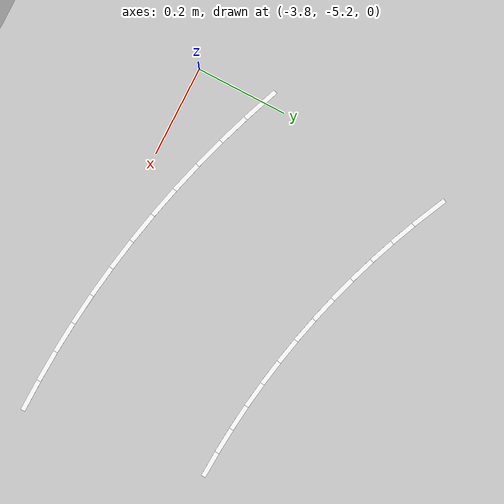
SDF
<sdf version="1.7">
 <world name="default">
  <model name="ground_plane">
   <static>1</static>
   <link name="link">
    <collision name="collision">
     <geometry><plane><normal>0 0 1</normal><size>100 100</size></plane></geometry>
     <surface>
      <contact><collide_bitmask>65535</collide_bitmask></contact>
      <friction><ode><mu>100</mu><mu2>50</mu2></ode></friction>
     </surface>
    </collision>
    <visual name="visual">
     <cast_shadows>0</cast_shadows>
     <geometry><plane><normal>0 0 1</normal><size>100 100</size></plane></geometry>
     <material>
      <script><uri>file://media/materials/scripts/gazebo.material</uri><name>Gazebo/Grey</name></script>
     </material>
    </visual>
   </link>
  </model>
  <model name="lane_line_left_385">
   <static>1</static>
   <link name="link">
    <pose>0 0 -0.004 0 -0 0</pose>
    <visual name="visual">
     <geometry><box><size>0.0841 0.01 0.01</size></box></geometry>
     <material><ambient>1 1 1 1</ambient><diffuse>1 1 1 1</diffuse></material>
    </visual>
    <collision name="collision"><geometry><box><size>0.0841 0.01 0.01</size></box></geometry></collision>
   </link>
   <pose>-3.75479 -4.63382 0 0 0 -0.43277</pose>
  </model>
  <model name="lane_line_left_386">
   <static>1</static>
   <link name="link">
    <pose>0 0 -0.004 0 -0 0</pose>
    <visual name="visual">
     <geometry><box><size>0.0841 0.01 0.01</size></box></geometry>
     <material><ambient>1 1 1 1</ambient><diffuse>1 1 1 1</diffuse></material>
    </visual>
    <collision name="collision"><geometry><box><size>0.0841 0.01 0.01</size></box></geometry></collision>
   </link>
   <pose>-3.70204 -4.65717 0 0 0 -0.400713</pose>
  </model>
  <model name="lane_line_left_387">
   <static>1</static>
   <link name="link">
    <pose>0 0 -0.004 0 -0 0</pose>
    <visual name="visual">
     <geometry><box><size>0.0841 0.01 0.01</size></box></geometry>
     <material><ambient>1 1 1 1</ambient><diffuse>1 1 1 1</diffuse></material>
    </visual>
    <collision name="collision"><geometry><box><size>0.0841 0.01 0.01</size></box></geometry></collision>
   </link>
   <pose>-3.64856 -4.67882 0 0 0 -0.368656</pose>
  </model>
  <model name="lane_line_right_387">
   <static>1</static>
   <link name="link">
    <pose>0 0 -0.004 0 -0 0</pose>
    <visual name="visual">
     <geometry><box><size>0.0841 0.01 0.01</size></box></geometry>
     <material><ambient>1 1 1 1</ambient><diffuse>1 1 1 1</diffuse></material>
    </visual>
    <collision name="collision"><geometry><box><size>0.0841 0.01 0.01</size></box></geometry></collision>
   </link>
   <pose>-3.7927 -5.05195 0 0 0 -0.368656</pose>
  </model>
  <model name="lane_line_left_388">
   <static>1</static>
   <link name="link">
    <pose>0 0 -0.004 0 -0 0</pose>
    <visual name="visual">
     <geometry><box><size>0.0841 0.01 0.01</size></box></geometry>
     <material><ambient>1 1 1 1</ambient><diffuse>1 1 1 1</diffuse></material>
    </visual>
    <collision name="collision"><geometry><box><size>0.0841 0.01 0.01</size></box></geometry></collision>
   </link>
   <pose>-3.59442 -4.69875 0 0 0 -0.336599</pose>
  </model>
  <model name="lane_line_right_388">
   <static>1</static>
   <link name="link">
    <pose>0 0 -0.004 0 -0 0</pose>
    <visual name="visual">
     <geometry><box><size>0.0841 0.01 0.01</size></box></geometry>
     <material><ambient>1 1 1 1</ambient><diffuse>1 1 1 1</diffuse></material>
    </visual>
    <collision name="collision"><geometry><box><size>0.0841 0.01 0.01</size></box></geometry></collision>
   </link>
   <pose>-3.72653 -5.0763 0 0 0 -0.336599</pose>
  </model>
  <model name="lane_line_left_389">
   <static>1</static>
   <link name="link">
    <pose>0 0 -0.004 0 -0 0</pose>
    <visual name="visual">
     <geometry><box><size>0.0841 0.01 0.01</size></box></geometry>
     <material><ambient>1 1 1 1</ambient><diffuse>1 1 1 1</diffuse></material>
    </visual>
    <collision name="collision"><geometry><box><size>0.0841 0.01 0.01</size></box></geometry></collision>
   </link>
   <pose>-3.53966 -4.71693 0 0 0 -0.304542</pose>
  </model>
  <model name="lane_line_right_389">
   <static>1</static>
   <link name="link">
    <pose>0 0 -0.004 0 -0 0</pose>
    <visual name="visual">
     <geometry><box><size>0.0841 0.01 0.01</size></box></geometry>
     <material><ambient>1 1 1 1</ambient><diffuse>1 1 1 1</diffuse></material>
    </visual>
    <collision name="collision"><geometry><box><size>0.0841 0.01 0.01</size></box></geometry></collision>
   </link>
   <pose>-3.65961 -5.09852 0 0 0 -0.304542</pose>
  </model>
  <model name="lane_line_left_390">
   <static>1</static>
   <link name="link">
    <pose>0 0 -0.004 0 -0 0</pose>
    <visual name="visual">
     <geometry><box><size>0.0841 0.01 0.01</size></box></geometry>
     <material><ambient>1 1 1 1</ambient><diffuse>1 1 1 1</diffuse></material>
    </visual>
    <collision name="collision"><geometry><box><size>0.0841 0.01 0.01</size></box></geometry></collision>
   </link>
   <pose>-3.48436 -4.73334 0 0 0 -0.272485</pose>
  </model>
  <model name="lane_line_right_390">
   <static>1</static>
   <link name="link">
    <pose>0 0 -0.004 0 -0 0</pose>
    <visual name="visual">
     <geometry><box><size>0.0841 0.01 0.01</size></box></geometry>
     <material><ambient>1 1 1 1</ambient><diffuse>1 1 1 1</diffuse></material>
    </visual>
    <collision name="collision"><geometry><box><size>0.0841 0.01 0.01</size></box></geometry></collision>
   </link>
   <pose>-3.59201 -5.11858 0 0 0 -0.272485</pose>
  </model>
  <model name="lane_line_left_391">
   <static>1</static>
   <link name="link">
    <pose>0 0 -0.004 0 -0 0</pose>
    <visual name="visual">
     <geometry><box><size>0.0841 0.01 0.01</size></box></geometry>
     <material><ambient>1 1 1 1</ambient><diffuse>1 1 1 1</diffuse></material>
    </visual>
    <collision name="collision"><geometry><box><size>0.0841 0.01 0.01</size></box></geometry></collision>
   </link>
   <pose>-3.42855 -4.74798 0 0 0 -0.240428</pose>
  </model>
  <model name="lane_line_right_391">
   <static>1</static>
   <link name="link">
    <pose>0 0 -0.004 0 -0 0</pose>
    <visual name="visual">
     <geometry><box><size>0.0841 0.01 0.01</size></box></geometry>
     <material><ambient>1 1 1 1</ambient><diffuse>1 1 1 1</diffuse></material>
    </visual>
    <collision name="collision"><geometry><box><size>0.0841 0.01 0.01</size></box></geometry></collision>
   </link>
   <pose>-3.5238 -5.13647 0 0 0 -0.240428</pose>
  </model>
  <model name="lane_line_left_392">
   <static>1</static>
   <link name="link">
    <pose>0 0 -0.004 0 -0 0</pose>
    <visual name="visual">
     <geometry><box><size>0.0841 0.01 0.01</size></box></geometry>
     <material><ambient>1 1 1 1</ambient><diffuse>1 1 1 1</diffuse></material>
    </visual>
    <collision name="collision"><geometry><box><size>0.0841 0.01 0.01</size></box></geometry></collision>
   </link>
   <pose>-3.37231 -4.76081 0 0 0 -0.208371</pose>
  </model>
  <model name="lane_line_right_392">
   <static>1</static>
   <link name="link">
    <pose>0 0 -0.004 0 -0 0</pose>
    <visual name="visual">
     <geometry><box><size>0.0841 0.01 0.01</size></box></geometry>
     <material><ambient>1 1 1 1</ambient><diffuse>1 1 1 1</diffuse></material>
    </visual>
    <collision name="collision"><geometry><box><size>0.0841 0.01 0.01</size></box></geometry></collision>
   </link>
   <pose>-3.45505 -5.15216 0 0 0 -0.208371</pose>
  </model>
  <model name="lane_line_left_393">
   <static>1</static>
   <link name="link">
    <pose>0 0 -0.004 0 -0 0</pose>
    <visual name="visual">
     <geometry><box><size>0.0841 0.01 0.01</size></box></geometry>
     <material><ambient>1 1 1 1</ambient><diffuse>1 1 1 1</diffuse></material>
    </visual>
    <collision name="collision"><geometry><box><size>0.0841 0.01 0.01</size></box></geometry></collision>
   </link>
   <pose>-3.31568 -4.77184 0 0 0 -0.176314</pose>
  </model>
  <model name="lane_line_right_393">
   <static>1</static>
   <link name="link">
    <pose>0 0 -0.004 0 -0 0</pose>
    <visual name="visual">
     <geometry><box><size>0.0841 0.01 0.01</size></box></geometry>
     <material><ambient>1 1 1 1</ambient><diffuse>1 1 1 1</diffuse></material>
    </visual>
    <collision name="collision"><geometry><box><size>0.0841 0.01 0.01</size></box></geometry></collision>
   </link>
   <pose>-3.38584 -5.16564 0 0 0 -0.176314</pose>
  </model>
  <model name="lane_line_left_394">
   <static>1</static>
   <link name="link">
    <pose>0 0 -0.004 0 -0 0</pose>
    <visual name="visual">
     <geometry><box><size>0.0841 0.01 0.01</size></box></geometry>
     <material><ambient>1 1 1 1</ambient><diffuse>1 1 1 1</diffuse></material>
    </visual>
    <collision name="collision"><geometry><box><size>0.0841 0.01 0.01</size></box></geometry></collision>
   </link>
   <pose>-3.25873 -4.78105 0 0 0 -0.144257</pose>
  </model>
  <model name="lane_line_right_394">
   <static>1</static>
   <link name="link">
    <pose>0 0 -0.004 0 -0 0</pose>
    <visual name="visual">
     <geometry><box><size>0.0841 0.01 0.01</size></box></geometry>
     <material><ambient>1 1 1 1</ambient><diffuse>1 1 1 1</diffuse></material>
    </visual>
    <collision name="collision"><geometry><box><size>0.0841 0.01 0.01</size></box></geometry></collision>
   </link>
   <pose>-3.31623 -5.17689 0 0 0 -0.144257</pose>
  </model>
  <model name="lane_line_left_395">
   <static>1</static>
   <link name="link">
    <pose>0 0 -0.004 0 -0 0</pose>
    <visual name="visual">
     <geometry><box><size>0.0841 0.01 0.01</size></box></geometry>
     <material><ambient>1 1 1 1</ambient><diffuse>1 1 1 1</diffuse></material>
    </visual>
    <collision name="collision"><geometry><box><size>0.0841 0.01 0.01</size></box></geometry></collision>
   </link>
   <pose>-3.20151 -4.78843 0 0 0 -0.1122</pose>
  </model>
  <model name="lane_line_right_395">
   <static>1</static>
   <link name="link">
    <pose>0 0 -0.004 0 -0 0</pose>
    <visual name="visual">
     <geometry><box><size>0.0841 0.01 0.01</size></box></geometry>
     <material><ambient>1 1 1 1</ambient><diffuse>1 1 1 1</diffuse></material>
    </visual>
    <collision name="collision"><geometry><box><size>0.0841 0.01 0.01</size></box></geometry></collision>
   </link>
   <pose>-3.24629 -5.18591 0 0 0 -0.1122</pose>
  </model>
  <model name="lane_line_left_396">
   <static>1</static>
   <link name="link">
    <pose>0 0 -0.004 0 -0 0</pose>
    <visual name="visual">
     <geometry><box><size>0.0841 0.01 0.01</size></box></geometry>
     <material><ambient>1 1 1 1</ambient><diffuse>1 1 1 1</diffuse></material>
    </visual>
    <collision name="collision"><geometry><box><size>0.0841 0.01 0.01</size></box></geometry></collision>
   </link>
   <pose>-3.14408 -4.79397 0 0 0 -0.080143</pose>
  </model>
  <model name="lane_line_right_396">
   <static>1</static>
   <link name="link">
    <pose>0 0 -0.004 0 -0 0</pose>
    <visual name="visual">
     <geometry><box><size>0.0841 0.01 0.01</size></box></geometry>
     <material><ambient>1 1 1 1</ambient><diffuse>1 1 1 1</diffuse></material>
    </visual>
    <collision name="collision"><geometry><box><size>0.0841 0.01 0.01</size></box></geometry></collision>
   </link>
   <pose>-3.1761 -5.19268 0 0 0 -0.080143</pose>
  </model>
  <model name="lane_line_left_397">
   <static>1</static>
   <link name="link">
    <pose>0 0 -0.004 0 -0 0</pose>
    <visual name="visual">
     <geometry><box><size>0.0841 0.01 0.01</size></box></geometry>
     <material><ambient>1 1 1 1</ambient><diffuse>1 1 1 1</diffuse></material>
    </visual>
    <collision name="collision"><geometry><box><size>0.0841 0.01 0.01</size></box></geometry></collision>
   </link>
   <pose>-3.08651 -4.79766 0 0 0 -0.048086</pose>
  </model>
  <model name="lane_line_right_397">
   <static>1</static>
   <link name="link">
    <pose>0 0 -0.004 0 -0 0</pose>
    <visual name="visual">
     <geometry><box><size>0.0841 0.01 0.01</size></box></geometry>
     <material><ambient>1 1 1 1</ambient><diffuse>1 1 1 1</diffuse></material>
    </visual>
    <collision name="collision"><geometry><box><size>0.0841 0.01 0.01</size></box></geometry></collision>
   </link>
   <pose>-3.10574 -5.1972 0 0 0 -0.048086</pose>
  </model>
  <model name="lane_line_right_398">
   <static>1</static>
   <link name="link">
    <pose>0 0 -0.004 0 -0 0</pose>
    <visual name="visual">
     <geometry><box><size>0.0841 0.01 0.01</size></box></geometry>
     <material><ambient>1 1 1 1</ambient><diffuse>1 1 1 1</diffuse></material>
    </visual>
    <collision name="collision"><geometry><box><size>0.0841 0.01 0.01</size></box></geometry></collision>
   </link>
   <pose>-3.03526 -5.19946 0 0 0 -0.016029</pose>
  </model>
 </world>
</sdf>
